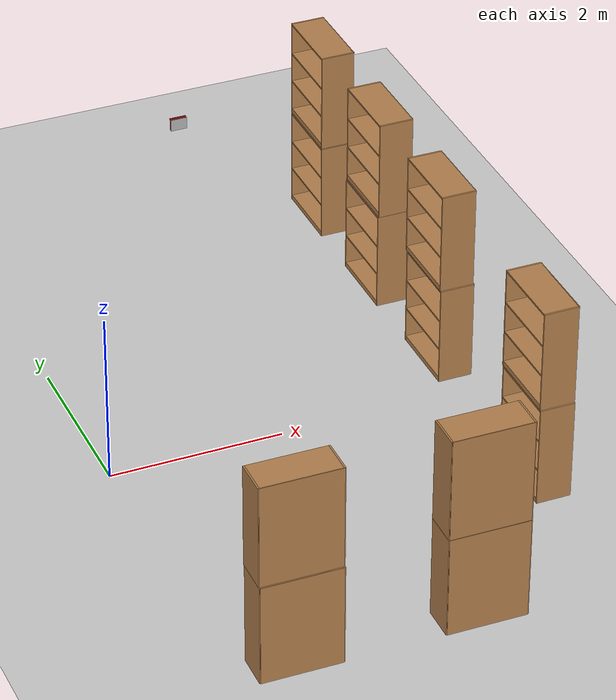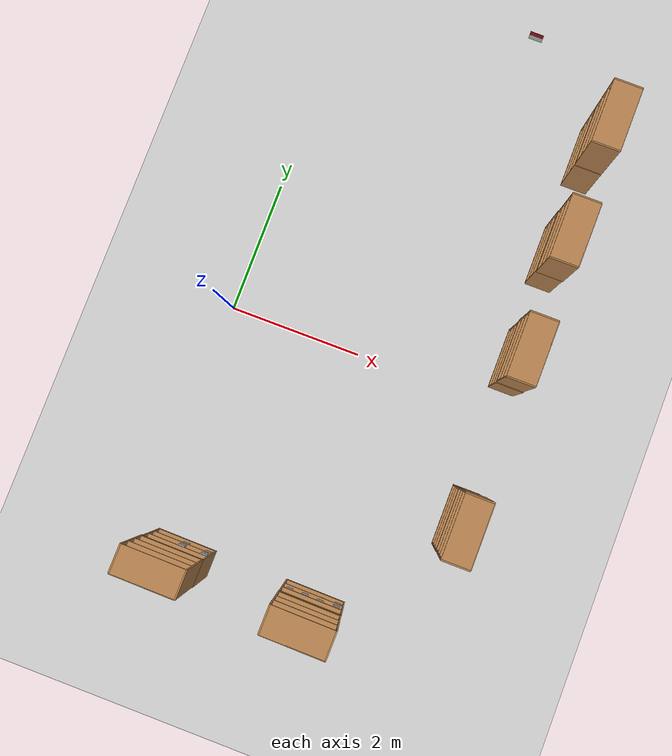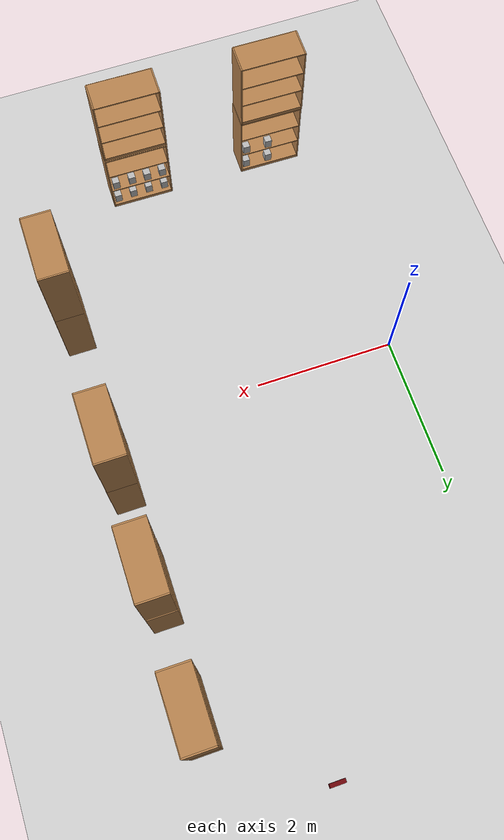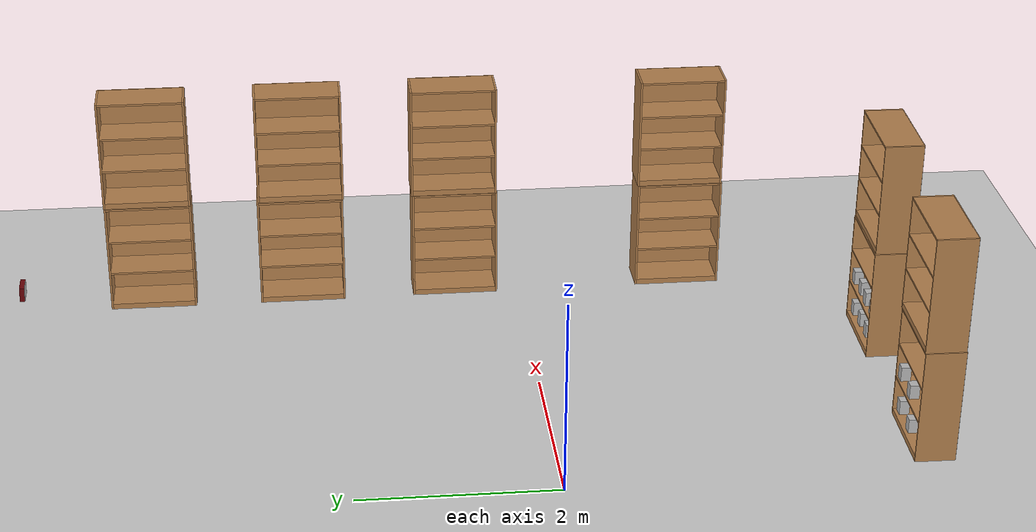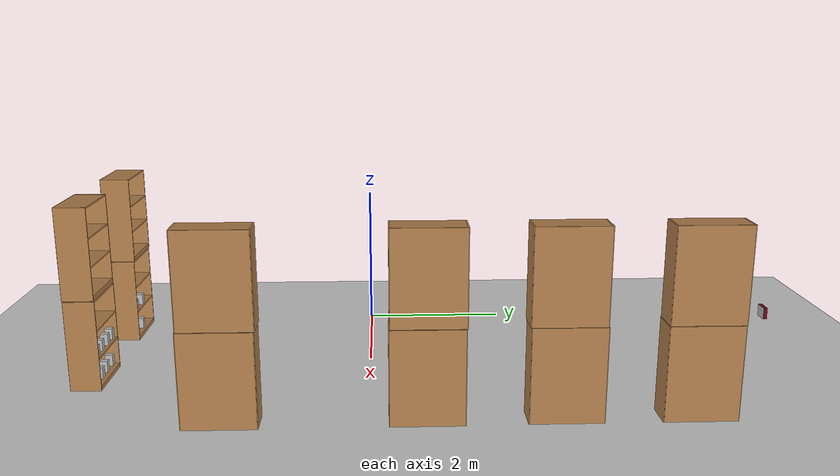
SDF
<sdf version="1.7">
 <world name="default">
  <model name="ground_plane">
   <static>1</static>
   <link name="link">
    <collision name="collision">
     <geometry><plane><normal>0 0 1</normal><size>100 100</size></plane></geometry>
     <surface><friction><ode><mu>100</mu><mu2>50</mu2></ode></friction></surface>
    </collision>
    <visual name="visual">
     <cast_shadows>0</cast_shadows>
     <geometry><plane><normal>0 0 1</normal><size>100 100</size></plane></geometry>
     <material>
      <script><uri>file://media/materials/scripts/gazebo.material</uri><name>Gazebo/Grey</name></script>
     </material>
    </visual>
   </link>
  </model>
  <model name="bookshelf_4_clone">
   <static>1</static>
   <link name="link">
    <inertial><mass>1</mass></inertial>
    <collision name="back">
     <pose>0 0.005 0.6 0 -0 0</pose>
     <geometry><box><size>0.9 0.01 1.2</size></box></geometry>
    </collision>
    <visual name="visual1">
     <pose>0 0.005 0.6 0 -0 0</pose>
     <geometry><box><size>0.9 0.01 1.2</size></box></geometry>
     <material>
      <script><uri>file://media/materials/scripts/gazebo.material</uri><name>Gazebo/Wood</name></script>
     </material>
    </visual>
    <collision name="left_side">
     <pose>0.45 -0.195 0.6 0 -0 0</pose>
     <geometry><box><size>0.02 0.4 1.2</size></box></geometry>
    </collision>
    <visual name="visual2">
     <pose>0.45 -0.195 0.6 0 -0 0</pose>
     <geometry><box><size>0.02 0.4 1.2</size></box></geometry>
     <material>
      <script><uri>file://media/materials/scripts/gazebo.material</uri><name>Gazebo/Wood</name></script>
     </material>
    </visual>
    <collision name="right_side">
     <pose>-0.45 -0.195 0.6 0 -0 0</pose>
     <geometry><box><size>0.02 0.4 1.2</size></box></geometry>
    </collision>
    <visual name="visual3">
     <pose>-0.45 -0.195 0.6 0 -0 0</pose>
     <geometry><box><size>0.02 0.4 1.2</size></box></geometry>
     <material>
      <script><uri>file://media/materials/scripts/gazebo.material</uri><name>Gazebo/Wood</name></script>
     </material>
    </visual>
    <collision name="bottom">
     <pose>0 -0.195 0.03 0 -0 0</pose>
     <geometry><box><size>0.88 0.4 0.06</size></box></geometry>
    </collision>
    <visual name="visual4">
     <pose>0 -0.195 0.03 0 -0 0</pose>
     <geometry><box><size>0.88 0.4 0.06</size></box></geometry>
     <material>
      <script><uri>file://media/materials/scripts/gazebo.material</uri><name>Gazebo/Wood</name></script>
     </material>
    </visual>
    <collision name="top">
     <pose>0 -0.195 1.19 0 -0 0</pose>
     <geometry><box><size>0.88 0.4 0.02</size></box></geometry>
    </collision>
    <visual name="visual5">
     <pose>0 -0.195 1.19 0 -0 0</pose>
     <geometry><box><size>0.88 0.4 0.02</size></box></geometry>
     <material>
      <script><uri>file://media/materials/scripts/gazebo.material</uri><name>Gazebo/Wood</name></script>
     </material>
    </visual>
    <collision name="low_shelf">
     <pose>0 -0.195 0.43 0 -0 0</pose>
     <geometry><box><size>0.88 0.4 0.02</size></box></geometry>
    </collision>
    <visual name="visual6">
     <pose>0 -0.195 0.43 0 -0 0</pose>
     <geometry><box><size>0.88 0.4 0.02</size></box></geometry>
     <material>
      <script><uri>file://media/materials/scripts/gazebo.material</uri><name>Gazebo/Wood</name></script>
     </material>
    </visual>
    <collision name="high_shelf">
     <pose>0 -0.195 0.8 0 -0 0</pose>
     <geometry><box><size>0.88 0.4 0.02</size></box></geometry>
    </collision>
    <visual name="visual7">
     <pose>0 -0.195 0.8 0 -0 0</pose>
     <geometry><box><size>0.88 0.4 0.02</size></box></geometry>
     <material>
      <script><uri>file://media/materials/scripts/gazebo.material</uri><name>Gazebo/Wood</name></script>
     </material>
    </visual>
   </link>
   <pose>4.37345 3.97883 0 0 0 -1.5727</pose>
  </model>
  <model name="bookshelf_4_clone_0">
   <static>1</static>
   <link name="link">
    <inertial><mass>1</mass></inertial>
    <collision name="back">
     <pose>0 0.005 0.6 0 -0 0</pose>
     <geometry><box><size>0.9 0.01 1.2</size></box></geometry>
    </collision>
    <visual name="visual1">
     <pose>0 0.005 0.6 0 -0 0</pose>
     <geometry><box><size>0.9 0.01 1.2</size></box></geometry>
     <material>
      <script><uri>file://media/materials/scripts/gazebo.material</uri><name>Gazebo/Wood</name></script>
     </material>
    </visual>
    <collision name="left_side">
     <pose>0.45 -0.195 0.6 0 -0 0</pose>
     <geometry><box><size>0.02 0.4 1.2</size></box></geometry>
    </collision>
    <visual name="visual2">
     <pose>0.45 -0.195 0.6 0 -0 0</pose>
     <geometry><box><size>0.02 0.4 1.2</size></box></geometry>
     <material>
      <script><uri>file://media/materials/scripts/gazebo.material</uri><name>Gazebo/Wood</name></script>
     </material>
    </visual>
    <collision name="right_side">
     <pose>-0.45 -0.195 0.6 0 -0 0</pose>
     <geometry><box><size>0.02 0.4 1.2</size></box></geometry>
    </collision>
    <visual name="visual3">
     <pose>-0.45 -0.195 0.6 0 -0 0</pose>
     <geometry><box><size>0.02 0.4 1.2</size></box></geometry>
     <material>
      <script><uri>file://media/materials/scripts/gazebo.material</uri><name>Gazebo/Wood</name></script>
     </material>
    </visual>
    <collision name="bottom">
     <pose>0 -0.195 0.03 0 -0 0</pose>
     <geometry><box><size>0.88 0.4 0.06</size></box></geometry>
    </collision>
    <visual name="visual4">
     <pose>0 -0.195 0.03 0 -0 0</pose>
     <geometry><box><size>0.88 0.4 0.06</size></box></geometry>
     <material>
      <script><uri>file://media/materials/scripts/gazebo.material</uri><name>Gazebo/Wood</name></script>
     </material>
    </visual>
    <collision name="top">
     <pose>0 -0.195 1.19 0 -0 0</pose>
     <geometry><box><size>0.88 0.4 0.02</size></box></geometry>
    </collision>
    <visual name="visual5">
     <pose>0 -0.195 1.19 0 -0 0</pose>
     <geometry><box><size>0.88 0.4 0.02</size></box></geometry>
     <material>
      <script><uri>file://media/materials/scripts/gazebo.material</uri><name>Gazebo/Wood</name></script>
     </material>
    </visual>
    <collision name="low_shelf">
     <pose>0 -0.195 0.43 0 -0 0</pose>
     <geometry><box><size>0.88 0.4 0.02</size></box></geometry>
    </collision>
    <visual name="visual6">
     <pose>0 -0.195 0.43 0 -0 0</pose>
     <geometry><box><size>0.88 0.4 0.02</size></box></geometry>
     <material>
      <script><uri>file://media/materials/scripts/gazebo.material</uri><name>Gazebo/Wood</name></script>
     </material>
    </visual>
    <collision name="high_shelf">
     <pose>0 -0.195 0.8 0 -0 0</pose>
     <geometry><box><size>0.88 0.4 0.02</size></box></geometry>
    </collision>
    <visual name="visual7">
     <pose>0 -0.195 0.8 0 -0 0</pose>
     <geometry><box><size>0.88 0.4 0.02</size></box></geometry>
     <material>
      <script><uri>file://media/materials/scripts/gazebo.material</uri><name>Gazebo/Wood</name></script>
     </material>
    </visual>
   </link>
   <pose>4.37565 2.36025 0 0 0 -1.5727</pose>
  </model>
  <model name="bookshelf_4_clone_1">
   <static>1</static>
   <link name="link">
    <inertial><mass>1</mass></inertial>
    <collision name="back">
     <pose>0 0.005 0.6 0 -0 0</pose>
     <geometry><box><size>0.9 0.01 1.2</size></box></geometry>
    </collision>
    <visual name="visual1">
     <pose>0 0.005 0.6 0 -0 0</pose>
     <geometry><box><size>0.9 0.01 1.2</size></box></geometry>
     <material>
      <script><uri>file://media/materials/scripts/gazebo.material</uri><name>Gazebo/Wood</name></script>
     </material>
    </visual>
    <collision name="left_side">
     <pose>0.45 -0.195 0.6 0 -0 0</pose>
     <geometry><box><size>0.02 0.4 1.2</size></box></geometry>
    </collision>
    <visual name="visual2">
     <pose>0.45 -0.195 0.6 0 -0 0</pose>
     <geometry><box><size>0.02 0.4 1.2</size></box></geometry>
     <material>
      <script><uri>file://media/materials/scripts/gazebo.material</uri><name>Gazebo/Wood</name></script>
     </material>
    </visual>
    <collision name="right_side">
     <pose>-0.45 -0.195 0.6 0 -0 0</pose>
     <geometry><box><size>0.02 0.4 1.2</size></box></geometry>
    </collision>
    <visual name="visual3">
     <pose>-0.45 -0.195 0.6 0 -0 0</pose>
     <geometry><box><size>0.02 0.4 1.2</size></box></geometry>
     <material>
      <script><uri>file://media/materials/scripts/gazebo.material</uri><name>Gazebo/Wood</name></script>
     </material>
    </visual>
    <collision name="bottom">
     <pose>0 -0.195 0.03 0 -0 0</pose>
     <geometry><box><size>0.88 0.4 0.06</size></box></geometry>
    </collision>
    <visual name="visual4">
     <pose>0 -0.195 0.03 0 -0 0</pose>
     <geometry><box><size>0.88 0.4 0.06</size></box></geometry>
     <material>
      <script><uri>file://media/materials/scripts/gazebo.material</uri><name>Gazebo/Wood</name></script>
     </material>
    </visual>
    <collision name="top">
     <pose>0 -0.195 1.19 0 -0 0</pose>
     <geometry><box><size>0.88 0.4 0.02</size></box></geometry>
    </collision>
    <visual name="visual5">
     <pose>0 -0.195 1.19 0 -0 0</pose>
     <geometry><box><size>0.88 0.4 0.02</size></box></geometry>
     <material>
      <script><uri>file://media/materials/scripts/gazebo.material</uri><name>Gazebo/Wood</name></script>
     </material>
    </visual>
    <collision name="low_shelf">
     <pose>0 -0.195 0.43 0 -0 0</pose>
     <geometry><box><size>0.88 0.4 0.02</size></box></geometry>
    </collision>
    <visual name="visual6">
     <pose>0 -0.195 0.43 0 -0 0</pose>
     <geometry><box><size>0.88 0.4 0.02</size></box></geometry>
     <material>
      <script><uri>file://media/materials/scripts/gazebo.material</uri><name>Gazebo/Wood</name></script>
     </material>
    </visual>
    <collision name="high_shelf">
     <pose>0 -0.195 0.8 0 -0 0</pose>
     <geometry><box><size>0.88 0.4 0.02</size></box></geometry>
    </collision>
    <visual name="visual7">
     <pose>0 -0.195 0.8 0 -0 0</pose>
     <geometry><box><size>0.88 0.4 0.02</size></box></geometry>
     <material>
      <script><uri>file://media/materials/scripts/gazebo.material</uri><name>Gazebo/Wood</name></script>
     </material>
    </visual>
   </link>
   <pose>4.39312 0.69592 0 0 0 -1.5727</pose>
  </model>
  <model name="bookshelf_4_clone_1_clone">
   <static>1</static>
   <link name="link">
    <inertial><mass>1</mass></inertial>
    <collision name="back">
     <pose>0 0.005 0.6 0 -0 0</pose>
     <geometry><box><size>0.9 0.01 1.2</size></box></geometry>
    </collision>
    <visual name="visual1">
     <pose>0 0.005 0.6 0 -0 0</pose>
     <geometry><box><size>0.9 0.01 1.2</size></box></geometry>
     <material>
      <script><uri>file://media/materials/scripts/gazebo.material</uri><name>Gazebo/Wood</name></script>
     </material>
    </visual>
    <collision name="left_side">
     <pose>0.45 -0.195 0.6 0 -0 0</pose>
     <geometry><box><size>0.02 0.4 1.2</size></box></geometry>
    </collision>
    <visual name="visual2">
     <pose>0.45 -0.195 0.6 0 -0 0</pose>
     <geometry><box><size>0.02 0.4 1.2</size></box></geometry>
     <material>
      <script><uri>file://media/materials/scripts/gazebo.material</uri><name>Gazebo/Wood</name></script>
     </material>
    </visual>
    <collision name="right_side">
     <pose>-0.45 -0.195 0.6 0 -0 0</pose>
     <geometry><box><size>0.02 0.4 1.2</size></box></geometry>
    </collision>
    <visual name="visual3">
     <pose>-0.45 -0.195 0.6 0 -0 0</pose>
     <geometry><box><size>0.02 0.4 1.2</size></box></geometry>
     <material>
      <script><uri>file://media/materials/scripts/gazebo.material</uri><name>Gazebo/Wood</name></script>
     </material>
    </visual>
    <collision name="bottom">
     <pose>0 -0.195 0.03 0 -0 0</pose>
     <geometry><box><size>0.88 0.4 0.06</size></box></geometry>
    </collision>
    <visual name="visual4">
     <pose>0 -0.195 0.03 0 -0 0</pose>
     <geometry><box><size>0.88 0.4 0.06</size></box></geometry>
     <material>
      <script><uri>file://media/materials/scripts/gazebo.material</uri><name>Gazebo/Wood</name></script>
     </material>
    </visual>
    <collision name="top">
     <pose>0 -0.195 1.19 0 -0 0</pose>
     <geometry><box><size>0.88 0.4 0.02</size></box></geometry>
    </collision>
    <visual name="visual5">
     <pose>0 -0.195 1.19 0 -0 0</pose>
     <geometry><box><size>0.88 0.4 0.02</size></box></geometry>
     <material>
      <script><uri>file://media/materials/scripts/gazebo.material</uri><name>Gazebo/Wood</name></script>
     </material>
    </visual>
    <collision name="low_shelf">
     <pose>0 -0.195 0.43 0 -0 0</pose>
     <geometry><box><size>0.88 0.4 0.02</size></box></geometry>
    </collision>
    <visual name="visual6">
     <pose>0 -0.195 0.43 0 -0 0</pose>
     <geometry><box><size>0.88 0.4 0.02</size></box></geometry>
     <material>
      <script><uri>file://media/materials/scripts/gazebo.material</uri><name>Gazebo/Wood</name></script>
     </material>
    </visual>
    <collision name="high_shelf">
     <pose>0 -0.195 0.8 0 -0 0</pose>
     <geometry><box><size>0.88 0.4 0.02</size></box></geometry>
    </collision>
    <visual name="visual7">
     <pose>0 -0.195 0.8 0 -0 0</pose>
     <geometry><box><size>0.88 0.4 0.02</size></box></geometry>
     <material>
      <script><uri>file://media/materials/scripts/gazebo.material</uri><name>Gazebo/Wood</name></script>
     </material>
    </visual>
   </link>
   <pose>4.3806 2.34957 1.20741 0 0 -1.5727</pose>
  </model>
  <model name="bookshelf_4_clone_1_clone_clone">
   <static>1</static>
   <link name="link">
    <inertial><mass>1</mass></inertial>
    <collision name="back">
     <pose>0 0.005 0.6 0 -0 0</pose>
     <geometry><box><size>0.9 0.01 1.2</size></box></geometry>
    </collision>
    <visual name="visual1">
     <pose>0 0.005 0.6 0 -0 0</pose>
     <geometry><box><size>0.9 0.01 1.2</size></box></geometry>
     <material>
      <script><uri>file://media/materials/scripts/gazebo.material</uri><name>Gazebo/Wood</name></script>
     </material>
    </visual>
    <collision name="left_side">
     <pose>0.45 -0.195 0.6 0 -0 0</pose>
     <geometry><box><size>0.02 0.4 1.2</size></box></geometry>
    </collision>
    <visual name="visual2">
     <pose>0.45 -0.195 0.6 0 -0 0</pose>
     <geometry><box><size>0.02 0.4 1.2</size></box></geometry>
     <material>
      <script><uri>file://media/materials/scripts/gazebo.material</uri><name>Gazebo/Wood</name></script>
     </material>
    </visual>
    <collision name="right_side">
     <pose>-0.45 -0.195 0.6 0 -0 0</pose>
     <geometry><box><size>0.02 0.4 1.2</size></box></geometry>
    </collision>
    <visual name="visual3">
     <pose>-0.45 -0.195 0.6 0 -0 0</pose>
     <geometry><box><size>0.02 0.4 1.2</size></box></geometry>
     <material>
      <script><uri>file://media/materials/scripts/gazebo.material</uri><name>Gazebo/Wood</name></script>
     </material>
    </visual>
    <collision name="bottom">
     <pose>0 -0.195 0.03 0 -0 0</pose>
     <geometry><box><size>0.88 0.4 0.06</size></box></geometry>
    </collision>
    <visual name="visual4">
     <pose>0 -0.195 0.03 0 -0 0</pose>
     <geometry><box><size>0.88 0.4 0.06</size></box></geometry>
     <material>
      <script><uri>file://media/materials/scripts/gazebo.material</uri><name>Gazebo/Wood</name></script>
     </material>
    </visual>
    <collision name="top">
     <pose>0 -0.195 1.19 0 -0 0</pose>
     <geometry><box><size>0.88 0.4 0.02</size></box></geometry>
    </collision>
    <visual name="visual5">
     <pose>0 -0.195 1.19 0 -0 0</pose>
     <geometry><box><size>0.88 0.4 0.02</size></box></geometry>
     <material>
      <script><uri>file://media/materials/scripts/gazebo.material</uri><name>Gazebo/Wood</name></script>
     </material>
    </visual>
    <collision name="low_shelf">
     <pose>0 -0.195 0.43 0 -0 0</pose>
     <geometry><box><size>0.88 0.4 0.02</size></box></geometry>
    </collision>
    <visual name="visual6">
     <pose>0 -0.195 0.43 0 -0 0</pose>
     <geometry><box><size>0.88 0.4 0.02</size></box></geometry>
     <material>
      <script><uri>file://media/materials/scripts/gazebo.material</uri><name>Gazebo/Wood</name></script>
     </material>
    </visual>
    <collision name="high_shelf">
     <pose>0 -0.195 0.8 0 -0 0</pose>
     <geometry><box><size>0.88 0.4 0.02</size></box></geometry>
    </collision>
    <visual name="visual7">
     <pose>0 -0.195 0.8 0 -0 0</pose>
     <geometry><box><size>0.88 0.4 0.02</size></box></geometry>
     <material>
      <script><uri>file://media/materials/scripts/gazebo.material</uri><name>Gazebo/Wood</name></script>
     </material>
    </visual>
   </link>
   <pose>4.37481 3.98386 1.20741 0 0 -1.5727</pose>
  </model>
  <model name="bookshelf_4_clone_1_clone_clone_0">
   <static>1</static>
   <link name="link">
    <inertial><mass>1</mass></inertial>
    <collision name="back">
     <pose>0 0.005 0.6 0 -0 0</pose>
     <geometry><box><size>0.9 0.01 1.2</size></box></geometry>
    </collision>
    <visual name="visual1">
     <pose>0 0.005 0.6 0 -0 0</pose>
     <geometry><box><size>0.9 0.01 1.2</size></box></geometry>
     <material>
      <script><uri>file://media/materials/scripts/gazebo.material</uri><name>Gazebo/Wood</name></script>
     </material>
    </visual>
    <collision name="left_side">
     <pose>0.45 -0.195 0.6 0 -0 0</pose>
     <geometry><box><size>0.02 0.4 1.2</size></box></geometry>
    </collision>
    <visual name="visual2">
     <pose>0.45 -0.195 0.6 0 -0 0</pose>
     <geometry><box><size>0.02 0.4 1.2</size></box></geometry>
     <material>
      <script><uri>file://media/materials/scripts/gazebo.material</uri><name>Gazebo/Wood</name></script>
     </material>
    </visual>
    <collision name="right_side">
     <pose>-0.45 -0.195 0.6 0 -0 0</pose>
     <geometry><box><size>0.02 0.4 1.2</size></box></geometry>
    </collision>
    <visual name="visual3">
     <pose>-0.45 -0.195 0.6 0 -0 0</pose>
     <geometry><box><size>0.02 0.4 1.2</size></box></geometry>
     <material>
      <script><uri>file://media/materials/scripts/gazebo.material</uri><name>Gazebo/Wood</name></script>
     </material>
    </visual>
    <collision name="bottom">
     <pose>0 -0.195 0.03 0 -0 0</pose>
     <geometry><box><size>0.88 0.4 0.06</size></box></geometry>
    </collision>
    <visual name="visual4">
     <pose>0 -0.195 0.03 0 -0 0</pose>
     <geometry><box><size>0.88 0.4 0.06</size></box></geometry>
     <material>
      <script><uri>file://media/materials/scripts/gazebo.material</uri><name>Gazebo/Wood</name></script>
     </material>
    </visual>
    <collision name="top">
     <pose>0 -0.195 1.19 0 -0 0</pose>
     <geometry><box><size>0.88 0.4 0.02</size></box></geometry>
    </collision>
    <visual name="visual5">
     <pose>0 -0.195 1.19 0 -0 0</pose>
     <geometry><box><size>0.88 0.4 0.02</size></box></geometry>
     <material>
      <script><uri>file://media/materials/scripts/gazebo.material</uri><name>Gazebo/Wood</name></script>
     </material>
    </visual>
    <collision name="low_shelf">
     <pose>0 -0.195 0.43 0 -0 0</pose>
     <geometry><box><size>0.88 0.4 0.02</size></box></geometry>
    </collision>
    <visual name="visual6">
     <pose>0 -0.195 0.43 0 -0 0</pose>
     <geometry><box><size>0.88 0.4 0.02</size></box></geometry>
     <material>
      <script><uri>file://media/materials/scripts/gazebo.material</uri><name>Gazebo/Wood</name></script>
     </material>
    </visual>
    <collision name="high_shelf">
     <pose>0 -0.195 0.8 0 -0 0</pose>
     <geometry><box><size>0.88 0.4 0.02</size></box></geometry>
    </collision>
    <visual name="visual7">
     <pose>0 -0.195 0.8 0 -0 0</pose>
     <geometry><box><size>0.88 0.4 0.02</size></box></geometry>
     <material>
      <script><uri>file://media/materials/scripts/gazebo.material</uri><name>Gazebo/Wood</name></script>
     </material>
    </visual>
   </link>
   <pose>4.38615 0.705306 1.20741 0 0 -1.5727</pose>
  </model>
  <model name="bookshelf_5">
   <static>1</static>
   <link name="link">
    <inertial><mass>1</mass></inertial>
    <collision name="back">
     <pose>0 0.005 0.6 0 -0 0</pose>
     <geometry><box><size>0.9 0.01 1.2</size></box></geometry>
    </collision>
    <visual name="visual1">
     <pose>0 0.005 0.6 0 -0 0</pose>
     <geometry><box><size>0.9 0.01 1.2</size></box></geometry>
     <material>
      <script><uri>file://media/materials/scripts/gazebo.material</uri><name>Gazebo/Wood</name></script>
     </material>
    </visual>
    <collision name="left_side">
     <pose>0.45 -0.195 0.6 0 -0 0</pose>
     <geometry><box><size>0.02 0.4 1.2</size></box></geometry>
    </collision>
    <visual name="visual2">
     <pose>0.45 -0.195 0.6 0 -0 0</pose>
     <geometry><box><size>0.02 0.4 1.2</size></box></geometry>
     <material>
      <script><uri>file://media/materials/scripts/gazebo.material</uri><name>Gazebo/Wood</name></script>
     </material>
    </visual>
    <collision name="right_side">
     <pose>-0.45 -0.195 0.6 0 -0 0</pose>
     <geometry><box><size>0.02 0.4 1.2</size></box></geometry>
    </collision>
    <visual name="visual3">
     <pose>-0.45 -0.195 0.6 0 -0 0</pose>
     <geometry><box><size>0.02 0.4 1.2</size></box></geometry>
     <material>
      <script><uri>file://media/materials/scripts/gazebo.material</uri><name>Gazebo/Wood</name></script>
     </material>
    </visual>
    <collision name="bottom">
     <pose>0 -0.195 0.03 0 -0 0</pose>
     <geometry><box><size>0.88 0.4 0.06</size></box></geometry>
    </collision>
    <visual name="visual4">
     <pose>0 -0.195 0.03 0 -0 0</pose>
     <geometry><box><size>0.88 0.4 0.06</size></box></geometry>
     <material>
      <script><uri>file://media/materials/scripts/gazebo.material</uri><name>Gazebo/Wood</name></script>
     </material>
    </visual>
    <collision name="top">
     <pose>0 -0.195 1.19 0 -0 0</pose>
     <geometry><box><size>0.88 0.4 0.02</size></box></geometry>
    </collision>
    <visual name="visual5">
     <pose>0 -0.195 1.19 0 -0 0</pose>
     <geometry><box><size>0.88 0.4 0.02</size></box></geometry>
     <material>
      <script><uri>file://media/materials/scripts/gazebo.material</uri><name>Gazebo/Wood</name></script>
     </material>
    </visual>
    <collision name="low_shelf">
     <pose>0 -0.195 0.43 0 -0 0</pose>
     <geometry><box><size>0.88 0.4 0.02</size></box></geometry>
    </collision>
    <visual name="visual6">
     <pose>0 -0.195 0.43 0 -0 0</pose>
     <geometry><box><size>0.88 0.4 0.02</size></box></geometry>
     <material>
      <script><uri>file://media/materials/scripts/gazebo.material</uri><name>Gazebo/Wood</name></script>
     </material>
    </visual>
    <collision name="high_shelf">
     <pose>0 -0.195 0.8 0 -0 0</pose>
     <geometry><box><size>0.88 0.4 0.02</size></box></geometry>
    </collision>
    <visual name="visual7">
     <pose>0 -0.195 0.8 0 -0 0</pose>
     <geometry><box><size>0.88 0.4 0.02</size></box></geometry>
     <material>
      <script><uri>file://media/materials/scripts/gazebo.material</uri><name>Gazebo/Wood</name></script>
     </material>
    </visual>
   </link>
   <pose>2.65151 -3.85953 0 0 -0 3.12955</pose>
  </model>
  <model name="bookshelf_5_clone_0">
   <static>1</static>
   <link name="link">
    <inertial><mass>1</mass></inertial>
    <collision name="back">
     <pose>0 0.005 0.6 0 -0 0</pose>
     <geometry><box><size>0.9 0.01 1.2</size></box></geometry>
    </collision>
    <visual name="visual1">
     <pose>0 0.005 0.6 0 -0 0</pose>
     <geometry><box><size>0.9 0.01 1.2</size></box></geometry>
     <material>
      <script><uri>file://media/materials/scripts/gazebo.material</uri><name>Gazebo/Wood</name></script>
     </material>
    </visual>
    <collision name="left_side">
     <pose>0.45 -0.195 0.6 0 -0 0</pose>
     <geometry><box><size>0.02 0.4 1.2</size></box></geometry>
    </collision>
    <visual name="visual2">
     <pose>0.45 -0.195 0.6 0 -0 0</pose>
     <geometry><box><size>0.02 0.4 1.2</size></box></geometry>
     <material>
      <script><uri>file://media/materials/scripts/gazebo.material</uri><name>Gazebo/Wood</name></script>
     </material>
    </visual>
    <collision name="right_side">
     <pose>-0.45 -0.195 0.6 0 -0 0</pose>
     <geometry><box><size>0.02 0.4 1.2</size></box></geometry>
    </collision>
    <visual name="visual3">
     <pose>-0.45 -0.195 0.6 0 -0 0</pose>
     <geometry><box><size>0.02 0.4 1.2</size></box></geometry>
     <material>
      <script><uri>file://media/materials/scripts/gazebo.material</uri><name>Gazebo/Wood</name></script>
     </material>
    </visual>
    <collision name="bottom">
     <pose>0 -0.195 0.03 0 -0 0</pose>
     <geometry><box><size>0.88 0.4 0.06</size></box></geometry>
    </collision>
    <visual name="visual4">
     <pose>0 -0.195 0.03 0 -0 0</pose>
     <geometry><box><size>0.88 0.4 0.06</size></box></geometry>
     <material>
      <script><uri>file://media/materials/scripts/gazebo.material</uri><name>Gazebo/Wood</name></script>
     </material>
    </visual>
    <collision name="top">
     <pose>0 -0.195 1.19 0 -0 0</pose>
     <geometry><box><size>0.88 0.4 0.02</size></box></geometry>
    </collision>
    <visual name="visual5">
     <pose>0 -0.195 1.19 0 -0 0</pose>
     <geometry><box><size>0.88 0.4 0.02</size></box></geometry>
     <material>
      <script><uri>file://media/materials/scripts/gazebo.material</uri><name>Gazebo/Wood</name></script>
     </material>
    </visual>
    <collision name="low_shelf">
     <pose>0 -0.195 0.43 0 -0 0</pose>
     <geometry><box><size>0.88 0.4 0.02</size></box></geometry>
    </collision>
    <visual name="visual6">
     <pose>0 -0.195 0.43 0 -0 0</pose>
     <geometry><box><size>0.88 0.4 0.02</size></box></geometry>
     <material>
      <script><uri>file://media/materials/scripts/gazebo.material</uri><name>Gazebo/Wood</name></script>
     </material>
    </visual>
    <collision name="high_shelf">
     <pose>0 -0.195 0.8 0 -0 0</pose>
     <geometry><box><size>0.88 0.4 0.02</size></box></geometry>
    </collision>
    <visual name="visual7">
     <pose>0 -0.195 0.8 0 -0 0</pose>
     <geometry><box><size>0.88 0.4 0.02</size></box></geometry>
     <material>
      <script><uri>file://media/materials/scripts/gazebo.material</uri><name>Gazebo/Wood</name></script>
     </material>
    </visual>
   </link>
   <pose>0.624398 -3.83719 0 0 -0 3.12955</pose>
  </model>
  <model name="bookshelf_5_clone">
   <static>1</static>
   <link name="link">
    <inertial><mass>1</mass></inertial>
    <collision name="back">
     <pose>0 0.005 0.6 0 -0 0</pose>
     <geometry><box><size>0.9 0.01 1.2</size></box></geometry>
    </collision>
    <visual name="visual1">
     <pose>0 0.005 0.6 0 -0 0</pose>
     <geometry><box><size>0.9 0.01 1.2</size></box></geometry>
     <material>
      <script><uri>file://media/materials/scripts/gazebo.material</uri><name>Gazebo/Wood</name></script>
     </material>
    </visual>
    <collision name="left_side">
     <pose>0.45 -0.195 0.6 0 -0 0</pose>
     <geometry><box><size>0.02 0.4 1.2</size></box></geometry>
    </collision>
    <visual name="visual2">
     <pose>0.45 -0.195 0.6 0 -0 0</pose>
     <geometry><box><size>0.02 0.4 1.2</size></box></geometry>
     <material>
      <script><uri>file://media/materials/scripts/gazebo.material</uri><name>Gazebo/Wood</name></script>
     </material>
    </visual>
    <collision name="right_side">
     <pose>-0.45 -0.195 0.6 0 -0 0</pose>
     <geometry><box><size>0.02 0.4 1.2</size></box></geometry>
    </collision>
    <visual name="visual3">
     <pose>-0.45 -0.195 0.6 0 -0 0</pose>
     <geometry><box><size>0.02 0.4 1.2</size></box></geometry>
     <material>
      <script><uri>file://media/materials/scripts/gazebo.material</uri><name>Gazebo/Wood</name></script>
     </material>
    </visual>
    <collision name="bottom">
     <pose>0 -0.195 0.03 0 -0 0</pose>
     <geometry><box><size>0.88 0.4 0.06</size></box></geometry>
    </collision>
    <visual name="visual4">
     <pose>0 -0.195 0.03 0 -0 0</pose>
     <geometry><box><size>0.88 0.4 0.06</size></box></geometry>
     <material>
      <script><uri>file://media/materials/scripts/gazebo.material</uri><name>Gazebo/Wood</name></script>
     </material>
    </visual>
    <collision name="top">
     <pose>0 -0.195 1.19 0 -0 0</pose>
     <geometry><box><size>0.88 0.4 0.02</size></box></geometry>
    </collision>
    <visual name="visual5">
     <pose>0 -0.195 1.19 0 -0 0</pose>
     <geometry><box><size>0.88 0.4 0.02</size></box></geometry>
     <material>
      <script><uri>file://media/materials/scripts/gazebo.material</uri><name>Gazebo/Wood</name></script>
     </material>
    </visual>
    <collision name="low_shelf">
     <pose>0 -0.195 0.43 0 -0 0</pose>
     <geometry><box><size>0.88 0.4 0.02</size></box></geometry>
    </collision>
    <visual name="visual6">
     <pose>0 -0.195 0.43 0 -0 0</pose>
     <geometry><box><size>0.88 0.4 0.02</size></box></geometry>
     <material>
      <script><uri>file://media/materials/scripts/gazebo.material</uri><name>Gazebo/Wood</name></script>
     </material>
    </visual>
    <collision name="high_shelf">
     <pose>0 -0.195 0.8 0 -0 0</pose>
     <geometry><box><size>0.88 0.4 0.02</size></box></geometry>
    </collision>
    <visual name="visual7">
     <pose>0 -0.195 0.8 0 -0 0</pose>
     <geometry><box><size>0.88 0.4 0.02</size></box></geometry>
     <material>
      <script><uri>file://media/materials/scripts/gazebo.material</uri><name>Gazebo/Wood</name></script>
     </material>
    </visual>
   </link>
   <pose>2.64795 -3.86432 1.21139 0 -0 3.12955</pose>
  </model>
  <model name="bookshelf_5_clone_clone">
   <static>1</static>
   <link name="link">
    <inertial><mass>1</mass></inertial>
    <collision name="back">
     <pose>0 0.005 0.6 0 -0 0</pose>
     <geometry><box><size>0.9 0.01 1.2</size></box></geometry>
    </collision>
    <visual name="visual1">
     <pose>0 0.005 0.6 0 -0 0</pose>
     <geometry><box><size>0.9 0.01 1.2</size></box></geometry>
     <material>
      <script><uri>file://media/materials/scripts/gazebo.material</uri><name>Gazebo/Wood</name></script>
     </material>
    </visual>
    <collision name="left_side">
     <pose>0.45 -0.195 0.6 0 -0 0</pose>
     <geometry><box><size>0.02 0.4 1.2</size></box></geometry>
    </collision>
    <visual name="visual2">
     <pose>0.45 -0.195 0.6 0 -0 0</pose>
     <geometry><box><size>0.02 0.4 1.2</size></box></geometry>
     <material>
      <script><uri>file://media/materials/scripts/gazebo.material</uri><name>Gazebo/Wood</name></script>
     </material>
    </visual>
    <collision name="right_side">
     <pose>-0.45 -0.195 0.6 0 -0 0</pose>
     <geometry><box><size>0.02 0.4 1.2</size></box></geometry>
    </collision>
    <visual name="visual3">
     <pose>-0.45 -0.195 0.6 0 -0 0</pose>
     <geometry><box><size>0.02 0.4 1.2</size></box></geometry>
     <material>
      <script><uri>file://media/materials/scripts/gazebo.material</uri><name>Gazebo/Wood</name></script>
     </material>
    </visual>
    <collision name="bottom">
     <pose>0 -0.195 0.03 0 -0 0</pose>
     <geometry><box><size>0.88 0.4 0.06</size></box></geometry>
    </collision>
    <visual name="visual4">
     <pose>0 -0.195 0.03 0 -0 0</pose>
     <geometry><box><size>0.88 0.4 0.06</size></box></geometry>
     <material>
      <script><uri>file://media/materials/scripts/gazebo.material</uri><name>Gazebo/Wood</name></script>
     </material>
    </visual>
    <collision name="top">
     <pose>0 -0.195 1.19 0 -0 0</pose>
     <geometry><box><size>0.88 0.4 0.02</size></box></geometry>
    </collision>
    <visual name="visual5">
     <pose>0 -0.195 1.19 0 -0 0</pose>
     <geometry><box><size>0.88 0.4 0.02</size></box></geometry>
     <material>
      <script><uri>file://media/materials/scripts/gazebo.material</uri><name>Gazebo/Wood</name></script>
     </material>
    </visual>
    <collision name="low_shelf">
     <pose>0 -0.195 0.43 0 -0 0</pose>
     <geometry><box><size>0.88 0.4 0.02</size></box></geometry>
    </collision>
    <visual name="visual6">
     <pose>0 -0.195 0.43 0 -0 0</pose>
     <geometry><box><size>0.88 0.4 0.02</size></box></geometry>
     <material>
      <script><uri>file://media/materials/scripts/gazebo.material</uri><name>Gazebo/Wood</name></script>
     </material>
    </visual>
    <collision name="high_shelf">
     <pose>0 -0.195 0.8 0 -0 0</pose>
     <geometry><box><size>0.88 0.4 0.02</size></box></geometry>
    </collision>
    <visual name="visual7">
     <pose>0 -0.195 0.8 0 -0 0</pose>
     <geometry><box><size>0.88 0.4 0.02</size></box></geometry>
     <material>
      <script><uri>file://media/materials/scripts/gazebo.material</uri><name>Gazebo/Wood</name></script>
     </material>
    </visual>
   </link>
   <pose>0.620317 -3.82873 1.21139 0 -0 3.12955</pose>
  </model>
  <model name="bookshelf_4_clone_clone">
   <static>1</static>
   <link name="link">
    <inertial><mass>1</mass></inertial>
    <collision name="back">
     <pose>0 0.005 0.6 0 -0 0</pose>
     <geometry><box><size>0.9 0.01 1.2</size></box></geometry>
    </collision>
    <visual name="visual1">
     <pose>0 0.005 0.6 0 -0 0</pose>
     <geometry><box><size>0.9 0.01 1.2</size></box></geometry>
     <material>
      <script><uri>file://media/materials/scripts/gazebo.material</uri><name>Gazebo/Wood</name></script>
     </material>
    </visual>
    <collision name="left_side">
     <pose>0.45 -0.195 0.6 0 -0 0</pose>
     <geometry><box><size>0.02 0.4 1.2</size></box></geometry>
    </collision>
    <visual name="visual2">
     <pose>0.45 -0.195 0.6 0 -0 0</pose>
     <geometry><box><size>0.02 0.4 1.2</size></box></geometry>
     <material>
      <script><uri>file://media/materials/scripts/gazebo.material</uri><name>Gazebo/Wood</name></script>
     </material>
    </visual>
    <collision name="right_side">
     <pose>-0.45 -0.195 0.6 0 -0 0</pose>
     <geometry><box><size>0.02 0.4 1.2</size></box></geometry>
    </collision>
    <visual name="visual3">
     <pose>-0.45 -0.195 0.6 0 -0 0</pose>
     <geometry><box><size>0.02 0.4 1.2</size></box></geometry>
     <material>
      <script><uri>file://media/materials/scripts/gazebo.material</uri><name>Gazebo/Wood</name></script>
     </material>
    </visual>
    <collision name="bottom">
     <pose>0 -0.195 0.03 0 -0 0</pose>
     <geometry><box><size>0.88 0.4 0.06</size></box></geometry>
    </collision>
    <visual name="visual4">
     <pose>0 -0.195 0.03 0 -0 0</pose>
     <geometry><box><size>0.88 0.4 0.06</size></box></geometry>
     <material>
      <script><uri>file://media/materials/scripts/gazebo.material</uri><name>Gazebo/Wood</name></script>
     </material>
    </visual>
    <collision name="top">
     <pose>0 -0.195 1.19 0 -0 0</pose>
     <geometry><box><size>0.88 0.4 0.02</size></box></geometry>
    </collision>
    <visual name="visual5">
     <pose>0 -0.195 1.19 0 -0 0</pose>
     <geometry><box><size>0.88 0.4 0.02</size></box></geometry>
     <material>
      <script><uri>file://media/materials/scripts/gazebo.material</uri><name>Gazebo/Wood</name></script>
     </material>
    </visual>
    <collision name="low_shelf">
     <pose>0 -0.195 0.43 0 -0 0</pose>
     <geometry><box><size>0.88 0.4 0.02</size></box></geometry>
    </collision>
    <visual name="visual6">
     <pose>0 -0.195 0.43 0 -0 0</pose>
     <geometry><box><size>0.88 0.4 0.02</size></box></geometry>
     <material>
      <script><uri>file://media/materials/scripts/gazebo.material</uri><name>Gazebo/Wood</name></script>
     </material>
    </visual>
    <collision name="high_shelf">
     <pose>0 -0.195 0.8 0 -0 0</pose>
     <geometry><box><size>0.88 0.4 0.02</size></box></geometry>
    </collision>
    <visual name="visual7">
     <pose>0 -0.195 0.8 0 -0 0</pose>
     <geometry><box><size>0.88 0.4 0.02</size></box></geometry>
     <material>
      <script><uri>file://media/materials/scripts/gazebo.material</uri><name>Gazebo/Wood</name></script>
     </material>
    </visual>
   </link>
   <pose>4.40573 -1.76165 0 0 0 -1.5727</pose>
  </model>
  <model name="bookshelf_4_clone_1_clone_clone_clone">
   <static>1</static>
   <link name="link">
    <inertial><mass>1</mass></inertial>
    <collision name="back">
     <pose>0 0.005 0.6 0 -0 0</pose>
     <geometry><box><size>0.9 0.01 1.2</size></box></geometry>
    </collision>
    <visual name="visual1">
     <pose>0 0.005 0.6 0 -0 0</pose>
     <geometry><box><size>0.9 0.01 1.2</size></box></geometry>
     <material>
      <script><uri>file://media/materials/scripts/gazebo.material</uri><name>Gazebo/Wood</name></script>
     </material>
    </visual>
    <collision name="left_side">
     <pose>0.45 -0.195 0.6 0 -0 0</pose>
     <geometry><box><size>0.02 0.4 1.2</size></box></geometry>
    </collision>
    <visual name="visual2">
     <pose>0.45 -0.195 0.6 0 -0 0</pose>
     <geometry><box><size>0.02 0.4 1.2</size></box></geometry>
     <material>
      <script><uri>file://media/materials/scripts/gazebo.material</uri><name>Gazebo/Wood</name></script>
     </material>
    </visual>
    <collision name="right_side">
     <pose>-0.45 -0.195 0.6 0 -0 0</pose>
     <geometry><box><size>0.02 0.4 1.2</size></box></geometry>
    </collision>
    <visual name="visual3">
     <pose>-0.45 -0.195 0.6 0 -0 0</pose>
     <geometry><box><size>0.02 0.4 1.2</size></box></geometry>
     <material>
      <script><uri>file://media/materials/scripts/gazebo.material</uri><name>Gazebo/Wood</name></script>
     </material>
    </visual>
    <collision name="bottom">
     <pose>0 -0.195 0.03 0 -0 0</pose>
     <geometry><box><size>0.88 0.4 0.06</size></box></geometry>
    </collision>
    <visual name="visual4">
     <pose>0 -0.195 0.03 0 -0 0</pose>
     <geometry><box><size>0.88 0.4 0.06</size></box></geometry>
     <material>
      <script><uri>file://media/materials/scripts/gazebo.material</uri><name>Gazebo/Wood</name></script>
     </material>
    </visual>
    <collision name="top">
     <pose>0 -0.195 1.19 0 -0 0</pose>
     <geometry><box><size>0.88 0.4 0.02</size></box></geometry>
    </collision>
    <visual name="visual5">
     <pose>0 -0.195 1.19 0 -0 0</pose>
     <geometry><box><size>0.88 0.4 0.02</size></box></geometry>
     <material>
      <script><uri>file://media/materials/scripts/gazebo.material</uri><name>Gazebo/Wood</name></script>
     </material>
    </visual>
    <collision name="low_shelf">
     <pose>0 -0.195 0.43 0 -0 0</pose>
     <geometry><box><size>0.88 0.4 0.02</size></box></geometry>
    </collision>
    <visual name="visual6">
     <pose>0 -0.195 0.43 0 -0 0</pose>
     <geometry><box><size>0.88 0.4 0.02</size></box></geometry>
     <material>
      <script><uri>file://media/materials/scripts/gazebo.material</uri><name>Gazebo/Wood</name></script>
     </material>
    </visual>
    <collision name="high_shelf">
     <pose>0 -0.195 0.8 0 -0 0</pose>
     <geometry><box><size>0.88 0.4 0.02</size></box></geometry>
    </collision>
    <visual name="visual7">
     <pose>0 -0.195 0.8 0 -0 0</pose>
     <geometry><box><size>0.88 0.4 0.02</size></box></geometry>
     <material>
      <script><uri>file://media/materials/scripts/gazebo.material</uri><name>Gazebo/Wood</name></script>
     </material>
    </visual>
   </link>
   <pose>4.40422 -1.75184 1.20741 0 0 -1.5727</pose>
  </model>
  <model name="tea_box_clone">
   <link name="link">
    <pose>0 0 0.075 0 -0 0</pose>
    <visual name="visual">
     <geometry><box><size>0.1 0.1 0.15</size></box></geometry>
     <material>
      <script>
       <uri>model://tea_box/materials/scripts</uri>
       <uri>model://tea_box/materials/textures</uri>
       <name>tea_pat</name>
      </script>
     </material>
    </visual>
    <collision name="collision"><geometry><box><size>0.1 0.1 0.15</size></box></geometry></collision>
   </link>
   <static>1</static>
   <pose>2.78357 -3.56921 0.061312 0 -0 1.56458</pose>
  </model>
  <model name="tea_box_clone_0">
   <link name="link">
    <pose>0 0 0.075 0 -0 0</pose>
    <visual name="visual">
     <geometry><box><size>0.1 0.1 0.15</size></box></geometry>
     <material>
      <script>
       <uri>model://tea_box/materials/scripts</uri>
       <uri>model://tea_box/materials/textures</uri>
       <name>tea_pat</name>
      </script>
     </material>
    </visual>
    <collision name="collision"><geometry><box><size>0.1 0.1 0.15</size></box></geometry></collision>
   </link>
   <static>1</static>
   <pose>2.54063 -3.57186 0.061312 0 -0 1.56458</pose>
  </model>
  <model name="tea_box_clone_1">
   <link name="link">
    <pose>0 0 0.075 0 -0 0</pose>
    <visual name="visual">
     <geometry><box><size>0.1 0.1 0.15</size></box></geometry>
     <material>
      <script>
       <uri>model://tea_box/materials/scripts</uri>
       <uri>model://tea_box/materials/textures</uri>
       <name>tea_pat</name>
      </script>
     </material>
    </visual>
    <collision name="collision"><geometry><box><size>0.1 0.1 0.15</size></box></geometry></collision>
   </link>
   <static>1</static>
   <pose>2.29718 -3.56584 0.061312 0 -0 1.56458</pose>
  </model>
  <model name="tea_box_clone_clone_0">
   <link name="link">
    <pose>0 0 0.075 0 -0 0</pose>
    <visual name="visual">
     <geometry><box><size>0.1 0.1 0.15</size></box></geometry>
     <material>
      <script>
       <uri>model://tea_box/materials/scripts</uri>
       <uri>model://tea_box/materials/textures</uri>
       <name>tea_pat</name>
      </script>
     </material>
    </visual>
    <collision name="collision"><geometry><box><size>0.1 0.1 0.15</size></box></geometry></collision>
   </link>
   <static>1</static>
   <pose>3.02264 -3.55748 0.061312 0 -0 1.56458</pose>
  </model>
  <model name="tea_box_clone_clone_clone">
   <link name="link">
    <pose>0 0 0.075 0 -0 0</pose>
    <visual name="visual">
     <geometry><box><size>0.1 0.1 0.15</size></box></geometry>
     <material>
      <script>
       <uri>model://tea_box/materials/scripts</uri>
       <uri>model://tea_box/materials/textures</uri>
       <name>tea_pat</name>
      </script>
     </material>
    </visual>
    <collision name="collision"><geometry><box><size>0.1 0.1 0.15</size></box></geometry></collision>
   </link>
   <static>1</static>
   <pose>2.77129 -3.5466 0.44421 0 -0 1.56458</pose>
  </model>
  <model name="tea_box_clone_clone_clone_clone">
   <link name="link">
    <pose>0 0 0.075 0 -0 0</pose>
    <visual name="visual">
     <geometry><box><size>0.1 0.1 0.15</size></box></geometry>
     <material>
      <script>
       <uri>model://tea_box/materials/scripts</uri>
       <uri>model://tea_box/materials/textures</uri>
       <name>tea_pat</name>
      </script>
     </material>
    </visual>
    <collision name="collision"><geometry><box><size>0.1 0.1 0.15</size></box></geometry></collision>
   </link>
   <static>1</static>
   <pose>3.01591 -3.53853 0.44421 0 -0 1.56458</pose>
  </model>
  <model name="tea_box_clone_clone_clone_clone_0">
   <link name="link">
    <pose>0 0 0.075 0 -0 0</pose>
    <visual name="visual">
     <geometry><box><size>0.1 0.1 0.15</size></box></geometry>
     <material>
      <script>
       <uri>model://tea_box/materials/scripts</uri>
       <uri>model://tea_box/materials/textures</uri>
       <name>tea_pat</name>
      </script>
     </material>
    </visual>
    <collision name="collision"><geometry><box><size>0.1 0.1 0.15</size></box></geometry></collision>
   </link>
   <static>1</static>
   <pose>2.5398 -3.53663 0.44421 0 -0 1.56458</pose>
  </model>
  <model name="tea_box_clone_clone_clone_clone_1">
   <link name="link">
    <pose>0 0 0.075 0 -0 0</pose>
    <visual name="visual">
     <geometry><box><size>0.1 0.1 0.15</size></box></geometry>
     <material>
      <script>
       <uri>model://tea_box/materials/scripts</uri>
       <uri>model://tea_box/materials/textures</uri>
       <name>tea_pat</name>
      </script>
     </material>
    </visual>
    <collision name="collision"><geometry><box><size>0.1 0.1 0.15</size></box></geometry></collision>
   </link>
   <static>1</static>
   <pose>2.30524 -3.54047 0.44421 0 -0 1.56458</pose>
  </model>
  <model name="tea_box_clone_1_clone">
   <link name="link">
    <pose>0 0 0.075 0 -0 0</pose>
    <visual name="visual">
     <geometry><box><size>0.1 0.1 0.15</size></box></geometry>
     <material>
      <script>
       <uri>model://tea_box/materials/scripts</uri>
       <uri>model://tea_box/materials/textures</uri>
       <name>tea_pat</name>
      </script>
     </material>
    </visual>
    <collision name="collision"><geometry><box><size>0.1 0.1 0.15</size></box></geometry></collision>
   </link>
   <static>1</static>
   <pose>0.989843 -3.52917 0.061312 0 -0 1.56458</pose>
  </model>
  <model name="tea_box_clone_1_clone_0">
   <link name="link">
    <pose>0 0 0.075 0 -0 0</pose>
    <visual name="visual">
     <geometry><box><size>0.1 0.1 0.15</size></box></geometry>
     <material>
      <script>
       <uri>model://tea_box/materials/scripts</uri>
       <uri>model://tea_box/materials/textures</uri>
       <name>tea_pat</name>
      </script>
     </material>
    </visual>
    <collision name="collision"><geometry><box><size>0.1 0.1 0.15</size></box></geometry></collision>
   </link>
   <static>1</static>
   <pose>0.640874 -3.52693 0.061312 0 -0 1.56458</pose>
  </model>
  <model name="tea_box_clone_clone_clone_clone_1_clone">
   <link name="link">
    <pose>0 0 0.075 0 -0 0</pose>
    <visual name="visual">
     <geometry><box><size>0.1 0.1 0.15</size></box></geometry>
     <material>
      <script>
       <uri>model://tea_box/materials/scripts</uri>
       <uri>model://tea_box/materials/textures</uri>
       <name>tea_pat</name>
      </script>
     </material>
    </visual>
    <collision name="collision"><geometry><box><size>0.1 0.1 0.15</size></box></geometry></collision>
   </link>
   <static>1</static>
   <pose>0.992767 -3.51094 0.44421 0 -0 1.56458</pose>
  </model>
  <model name="tea_box_clone_clone_clone_clone_1_clone_0">
   <link name="link">
    <pose>0 0 0.075 0 -0 0</pose>
    <visual name="visual">
     <geometry><box><size>0.1 0.1 0.15</size></box></geometry>
     <material>
      <script>
       <uri>model://tea_box/materials/scripts</uri>
       <uri>model://tea_box/materials/textures</uri>
       <name>tea_pat</name>
      </script>
     </material>
    </visual>
    <collision name="collision"><geometry><box><size>0.1 0.1 0.15</size></box></geometry></collision>
   </link>
   <static>1</static>
   <pose>0.650303 -3.5064 0.44421 0 -0 1.56458</pose>
  </model>
  <model name="biscuit_box_clone_0_clone_0_clone_clone_0">
   <link name="link">
    <pose>0 0 0.025 0 -0 0</pose>
    <visual name="visual">
     <geometry><box><size>0.2 0.15 0.05</size></box></geometry>
     <material>
      <ambient>0.423 0.019 0.035 1</ambient>
      <diffuse>0.423 0.019 0.035 1</diffuse>
      <specular>0.01 0.01 0.01 1</specular>
      <emissive>0 0 0 1</emissive>
     </material>
    </visual>
    <collision name="collision"><geometry><box><size>0.1 0.1 0.15</size></box></geometry></collision>
   </link>
   <link name="link_1">
    <pose>0 0 0.05 0 -0 0</pose>
    <visual name="visual">
     <geometry><box><size>0.2 0.15 0.001</size></box></geometry>
     <material>
      <script>
       <uri>model://biscuit_box/materials/scripts</uri>
       <uri>model://biscuit_box/materials/textures</uri>
       <name>biscuit_pat</name>
      </script>
     </material>
    </visual>
    <collision name="collision"><geometry><box><size>0.1 0.1 0.15</size></box></geometry></collision>
   </link>
   <static>1</static>
   <pose>2.834 5.24883 0.888325 1.59184 -0 0</pose>
  </model>
 </world>
</sdf>
